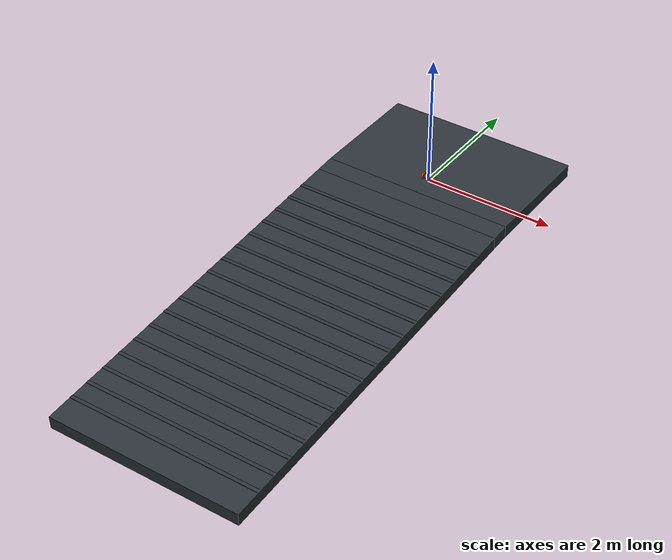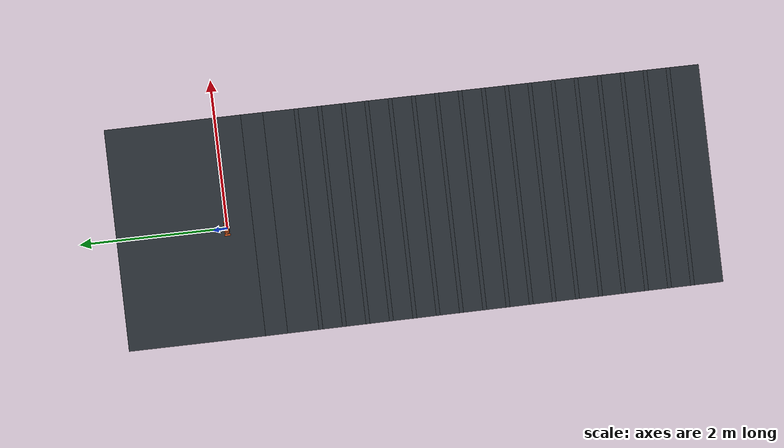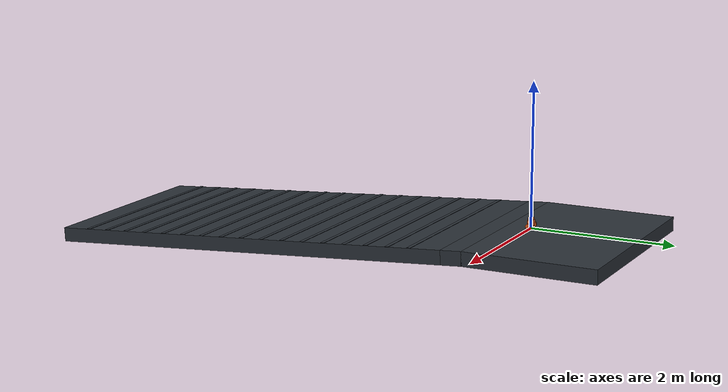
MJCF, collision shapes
<mujoco model="Stage4B rbase_ep_026_train_m04p0">
  <compiler angle="radian" meshdir="../../../../assets/upstream_local" />
  <option timestep="0.001" integrator="implicitfast" gravity="0 0 -9.81" />
  <statistic center="0 0 0.05" extent="0.28" />
  <default>
    <default class="visual">
      <geom contype="0" conaffinity="0" group="2" />
    </default>
    <default class="collision">
      <geom group="3" rgba="0.85 0.35 0.12 0.25" solref="0.005 1" solimp="0.9 0.95 0.001" />
    </default>
  </default>
  <asset>
    <texture name="ground_tex" type="2d" builtin="checker" rgb1="0.22 0.25 0.28" rgb2="0.12 0.14 0.16" width="256" height="256" />
    <material name="ground_mat" texture="ground_tex" texrepeat="4 4" reflectance="0.15" />
    <mesh name="main_frame_mesh" file="main_frame.stl" scale="0.001 0.001 0.001" />
    <mesh name="wheel_base_mesh" file="wheel_base.stl" scale="0.001 0.001 0.001" />
    <mesh name="cover_mesh" file="cover.stl" scale="0.001 0.001 0.001" />
    <mesh name="motor_left_mesh" file="motor_left.stl" scale="0.001 0.001 0.001" />
    <mesh name="motor_right_mesh" file="motor_right.stl" scale="0.001 0.001 0.001" />
    <mesh name="mc33926_mesh" file="mc33926.stl" scale="0.001 0.001 0.001" />
    <mesh name="wheel_mesh" file="wheel.stl" scale="0.001 0.001 0.001" />
    <mesh name="adapter_left_mesh" file="adapter_left.stl" scale="0.001 0.001 0.001" />
    <mesh name="adapter_right_mesh" file="adapter_right.stl" scale="0.001 0.001 0.001" />
  </asset>
  <worldbody>
    <light pos="0 -0.5 0.8" dir="0 0.6 -1" diffuse="0.8 0.8 0.8" />
    <geom name="terrain_flat" type="box" pos="0 0.575 -0.1" size="1.5 0.925 0.1" material="ground_mat" friction="1 0.005 0.0001" condim="3" />
    <geom name="terrain_transition" type="box" pos="0 -0.492658960165 -0.110219876088" euler="0.0698131700798 0 0" size="1.5 0.15 0.1" material="ground_mat" friction="1 0.005 0.0001" condim="3" />
    <geom name="terrain_constant_grade" type="box" pos="0 -3.63498571848 -0.329952768382" euler="0.0698131700798 0 0" size="1.5 3 0.1" material="ground_mat" friction="1 0.005 0.0001" condim="3" />
    <geom name="terrain_rough_00" type="box" pos="0 -1.09838230712 -0.0493246631573" euler="0.0698131700798 0 0" size="1.5 0.0275 0.003" material="ground_mat" friction="1 0.005 0.0001" condim="3" />
    <geom name="terrain_rough_01" type="box" pos="0 -1.4176028032 -0.0716467347554" euler="0.0698131700798 0 0" size="1.5 0.0275 0.003" material="ground_mat" friction="1 0.005 0.0001" condim="3" />
    <geom name="terrain_rough_02" type="box" pos="0 -1.73682329928 -0.0939688063536" euler="0.0698131700798 0 0" size="1.5 0.0275 0.003" material="ground_mat" friction="1 0.005 0.0001" condim="3" />
    <geom name="terrain_rough_03" type="box" pos="0 -2.05604379537 -0.116290877952" euler="0.0698131700798 0 0" size="1.5 0.0275 0.003" material="ground_mat" friction="1 0.005 0.0001" condim="3" />
    <geom name="terrain_rough_04" type="box" pos="0 -2.37526429145 -0.13861294955" euler="0.0698131700798 0 0" size="1.5 0.0275 0.003" material="ground_mat" friction="1 0.005 0.0001" condim="3" />
    <geom name="terrain_rough_05" type="box" pos="0 -2.69448478753 -0.160935021148" euler="0.0698131700798 0 0" size="1.5 0.0275 0.003" material="ground_mat" friction="1 0.005 0.0001" condim="3" />
    <geom name="terrain_rough_06" type="box" pos="0 -3.01370528361 -0.183257092746" euler="0.0698131700798 0 0" size="1.5 0.0275 0.003" material="ground_mat" friction="1 0.005 0.0001" condim="3" />
    <geom name="terrain_rough_07" type="box" pos="0 -3.3329257797 -0.205579164344" euler="0.0698131700798 0 0" size="1.5 0.0275 0.003" material="ground_mat" friction="1 0.005 0.0001" condim="3" />
    <geom name="terrain_rough_08" type="box" pos="0 -3.65214627578 -0.227901235942" euler="0.0698131700798 0 0" size="1.5 0.0275 0.003" material="ground_mat" friction="1 0.005 0.0001" condim="3" />
    <geom name="terrain_rough_09" type="box" pos="0 -3.97136677186 -0.25022330754" euler="0.0698131700798 0 0" size="1.5 0.0275 0.003" material="ground_mat" friction="1 0.005 0.0001" condim="3" />
    <geom name="terrain_rough_10" type="box" pos="0 -4.29058726795 -0.272545379139" euler="0.0698131700798 0 0" size="1.5 0.0275 0.003" material="ground_mat" friction="1 0.005 0.0001" condim="3" />
    <geom name="terrain_rough_11" type="box" pos="0 -4.60980776403 -0.294867450737" euler="0.0698131700798 0 0" size="1.5 0.0275 0.003" material="ground_mat" friction="1 0.005 0.0001" condim="3" />
    <geom name="terrain_rough_12" type="box" pos="0 -4.92902826011 -0.317189522335" euler="0.0698131700798 0 0" size="1.5 0.0275 0.003" material="ground_mat" friction="1 0.005 0.0001" condim="3" />
    <geom name="terrain_rough_13" type="box" pos="0 -5.2482487562 -0.339511593933" euler="0.0698131700798 0 0" size="1.5 0.0275 0.003" material="ground_mat" friction="1 0.005 0.0001" condim="3" />
    <geom name="terrain_rough_14" type="box" pos="0 -5.56746925228 -0.361833665531" euler="0.0698131700798 0 0" size="1.5 0.0275 0.003" material="ground_mat" friction="1 0.005 0.0001" condim="3" />
    <geom name="terrain_rough_15" type="box" pos="0 -5.88668974836 -0.384155737129" euler="0.0698131700798 0 0" size="1.5 0.0275 0.003" material="ground_mat" friction="1 0.005 0.0001" condim="3" />
    <geom name="terrain_rough_16" type="box" pos="0 -6.20591024445 -0.406477808727" euler="0.0698131700798 0 0" size="1.5 0.0275 0.003" material="ground_mat" friction="1 0.005 0.0001" condim="3" />
    <body name="chassis" pos="0 0 0.043">
      <freejoint name="root" />
      <inertial pos="0.0001592717873 -0.001394466535 0.03368627387" mass="0.8173706489" fullinertia="0.0009508052638 0.001636345835 0.0009938057434 -1.163464906e-07 -4.840496598e-06 3.454944565e-05" />
      <geom name="main_frame_visual" class="visual" type="mesh" mesh="main_frame_mesh" rgba="0.12 0.42 0.72 1" />
      <geom name="wheel_base_visual" class="visual" type="mesh" mesh="wheel_base_mesh" rgba="0.95 0.50 0.10 1" />
      <geom name="cover_visual" class="visual" type="mesh" mesh="cover_mesh" rgba="0.18 0.72 0.32 0.72" />
      <geom name="motor_left_visual" class="visual" type="mesh" mesh="motor_left_mesh" rgba="0.45 0.47 0.50 1" />
      <geom name="motor_right_visual" class="visual" type="mesh" mesh="motor_right_mesh" rgba="0.45 0.47 0.50 1" />
      <geom name="mc33926_visual" class="visual" type="mesh" mesh="mc33926_mesh" rgba="0.08 0.36 0.18 1" />
      <geom name="battery_1_visual" class="visual" type="box" pos="0 -0.012 0.038" size="0.035 0.007 0.025" rgba="0.15 0.25 0.75 1" />
      <geom name="battery_2_visual" class="visual" type="box" pos="0 0.012 0.038" size="0.035 0.007 0.025" rgba="0.15 0.25 0.75 1" />
      <geom name="electronics_lump_visual" class="visual" type="box" pos="0 -0.024 0.067" size="0.035 0.006 0.0425" rgba="0.10 0.42 0.20 0.65" />
      <geom name="wheel_base_collision" class="collision" type="box" pos="0 0.0005 0.0042" size="0.074 0.0201 0.0198" />
      <geom name="lower_chassis_collision" class="collision" type="box" pos="0.001 -0.0015 0.038" size="0.0595 0.0325 0.038" />
      <geom name="upper_chassis_collision" class="collision" type="capsule" fromto="-0.024 -0.0015 0.096 0.026 -0.0015 0.096" size="0.033" />
      <site name="imu_site" type="box" pos="0 0 0.020" quat="1 0 0 0" size="0.004 0.003 0.001" rgba="1 0.15 0.05 1" />
      <body name="left_wheel" pos="-0.0885 0 0">
        <joint name="left_wheel_hinge" type="hinge" axis="1 0 0" damping="0.002" frictionloss="0.002" />
        <inertial pos="0.001407549168 -2.310217342e-08 4.024972882e-05" mass="0.1051" fullinertia="8.559060347e-05 4.760138372e-05 4.763051958e-05 2.677568832e-11 -3.525425309e-08 -1.463149106e-11" />
        <geom name="left_wheel_visual" class="visual" type="mesh" mesh="wheel_mesh" rgba="0.04 0.05 0.06 1" />
        <geom name="left_adapter_visual" class="visual" type="mesh" mesh="adapter_left_mesh" rgba="0.12 0.48 0.82 1" />
        <geom name="left_wheel_collision" class="collision" type="cylinder" size="0.042 0.012" quat="0.7071067812 0 0.7071067812 0" friction="1 0.005 0.0001" />
      </body>
      <body name="right_wheel" pos="0.0885 0 0">
        <joint name="right_wheel_hinge" type="hinge" axis="1 0 0" damping="0.002" frictionloss="0.002" />
        <inertial pos="-0.001407437868 -2.310217342e-08 -4.019113045e-05" mass="0.1051" fullinertia="8.559060397e-05 4.760141714e-05 4.763055251e-05 -2.601653908e-11 -3.526339188e-08 1.57007511e-11" />
        <geom name="right_wheel_visual" class="visual" type="mesh" mesh="wheel_mesh" rgba="0.04 0.05 0.06 1" />
        <geom name="right_adapter_visual" class="visual" type="mesh" mesh="adapter_right_mesh" rgba="0.12 0.48 0.82 1" />
        <geom name="right_wheel_collision" class="collision" type="cylinder" size="0.042 0.012" quat="0.7071067812 0 0.7071067812 0" friction="1 0.005 0.0001" />
      </body>
    </body>
  </worldbody>
  <actuator>
    <motor name="left_wheel_torque" joint="left_wheel_hinge" gear="1" ctrllimited="true" ctrlrange="-0.63 0.63" forcelimited="true" forcerange="-0.63 0.63" />
    <motor name="right_wheel_torque" joint="right_wheel_hinge" gear="1" ctrllimited="true" ctrlrange="-0.63 0.63" forcelimited="true" forcerange="-0.63 0.63" />
  </actuator>
  <sensor>
    <accelerometer name="imu_accelerometer" site="imu_site" />
    <gyro name="imu_gyro" site="imu_site" />
    <jointpos name="left_wheel_angle" joint="left_wheel_hinge" />
    <jointpos name="right_wheel_angle" joint="right_wheel_hinge" />
  </sensor>
  <keyframe>
    <key name="upright" qpos="0 0 0.043 1 0 0 0 0 0" />
  </keyframe>
</mujoco>
